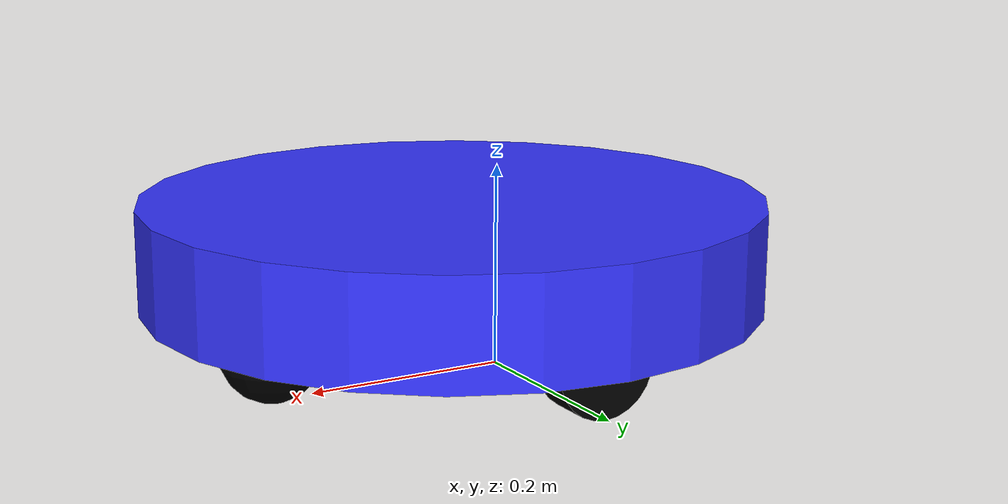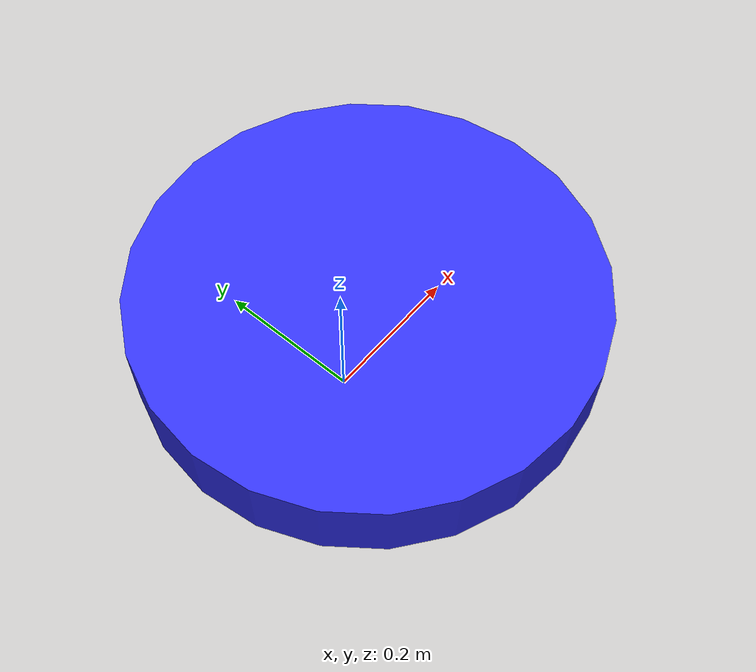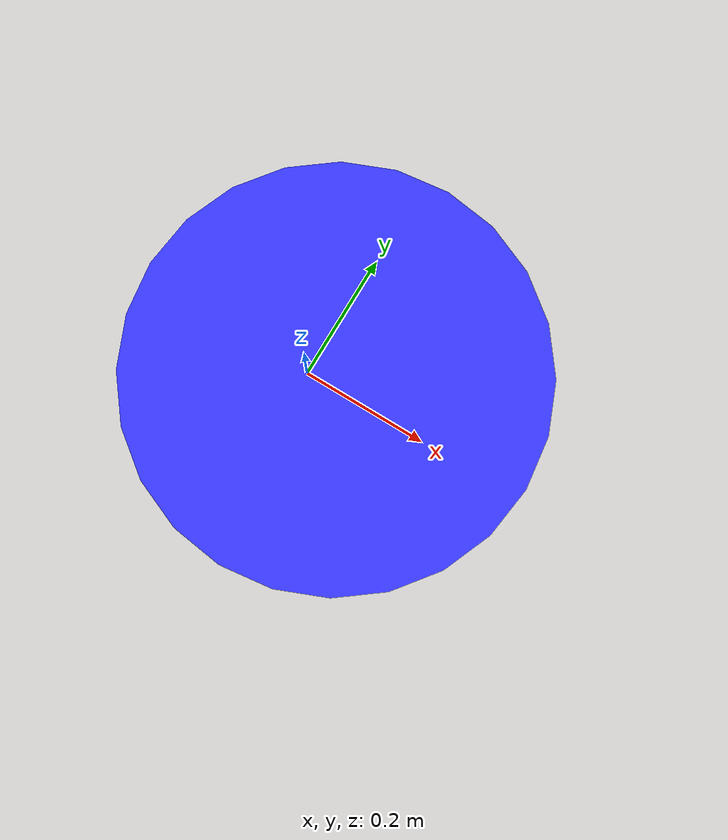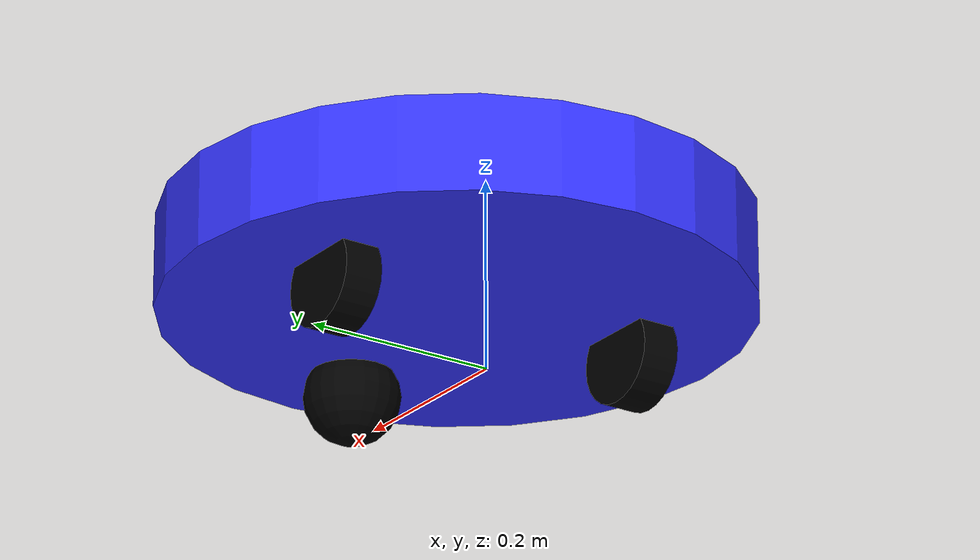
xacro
<?xml version="1.0"?>
<robot xmlns:xacro="http://www.ros.org/wiki/xacro">

    <xacro:include filename="inertial.xacro"/>

    <material name="white">
        <color rgba="1 1 1 1"/>
    </material>

    <material name="orange">
        <color rgba="1 0.3 0.1 1"/>
    </material>

    <material name="blue">
        <color rgba="0.2 0.2 1 1"/>
    </material>

    <material name="black">
        <color rgba="0 0 0 1"/>
    </material>

    <!-- BASE LINK -->
    <link name="base_link">
    </link>

    <!-- CHASSIS LINK -->
    <joint name="chassis_joint" type="fixed">
        <parent link="base_link"/>
        <child link="chassis"/>
        <origin xyz="-0.1 0 0.05"/>
    </joint>

    <link name="chassis">
        <visual>
            <origin xyz="0.15 0 0.075"/>
            <geometry>
                <cylinder radius="0.3" length="0.1"/> <!-- Circular chassis -->
            </geometry>
            <material name="blue">
                <color rgba="0.2 0.2 1 1"/>
            </material>
        </visual>
        <collision>
            <origin xyz="0.15 0 0.075"/>
            <geometry>
                <cylinder radius="0.3" length="0.15"/>
            </geometry>
        </collision>
        <xacro:inertial_cylinder mass="0.5" radius="0.3" length="0.15">
            <origin xyz="0.3 0 0.075" rpy="0 0 0"/>
        </xacro:inertial_cylinder>
    </link>

    <!-- LEFT WHEEL OF ROBOT -->
    <joint name="left_wheel_joint" type="continuous">
        <parent link="base_link"/>
        <child link="left_wheel"/>
        <origin xyz="0 0.175 0.05" rpy="-${pi/2} 0 0"/>
        <axis xyz="0 0 1"/>
    </joint>

    <link name="left_wheel">
        <visual>
            <geometry>
                <cylinder radius="0.05" length="0.04"/>
            </geometry>
            <material name="black">
                <color rgba="0 0 0 1"/>
            </material>
        </visual>
        <collision>
            <geometry>
                <cylinder radius="0.05" length="0.04"/>
            </geometry>
        </collision>
        <xacro:inertial_cylinder mass="0.1" length="0.04" radius="0.05">
            <origin xyz="0 0 0" rpy="0 0 0"/>
        </xacro:inertial_cylinder>
    </link>

    <gazebo reference="left_wheel">
        <mu1>1.0</mu1>
        <mu2>1.0</mu2>
    </gazebo>

    <!-- RIGHT WHEEL OF ROBOT -->
    <joint name="right_wheel_joint" type="continuous">
        <parent link="base_link"/>
        <child link="right_wheel"/>
        <origin xyz="0 -0.175 0.05" rpy="${pi/2} 0 0"/>
        <axis xyz="0 0 -1"/>
    </joint>

    <link name="right_wheel">
        <visual>
            <geometry>
                <cylinder radius="0.05" length="0.04"/>
            </geometry>
            <material name="black">
                <color rgba="0 0 0 1"/>
            </material>
        </visual>
        <collision>
            <geometry>
                <cylinder radius="0.05" length="0.04"/>
            </geometry>
        </collision>
        <xacro:inertial_cylinder mass="0.1" length="0.04" radius="0.05">
            <origin xyz="0 0 0" rpy="0 0 0"/>
        </xacro:inertial_cylinder>
    </link>

    <gazebo reference="right_wheel">
        <mu1>1.0</mu1>
        <mu2>1.0</mu2>
    </gazebo>

    <!-- DOLLY WHEEL JOINT -->
    <joint name="dolly_wheel_joint" type="fixed">
        <parent link="chassis"/>
        <child link="dolly_wheel"/>
        <origin xyz="0.34 0 0"/>
    </joint>

    <link name="dolly_wheel">
        <visual>
            <geometry>
                <sphere radius="0.05"/>
            </geometry>
            <material name="black">
                <color rgba="0 0 0 1"/>
            </material>
        </visual>
        <collision>
            <geometry>
                <sphere radius="0.05"/>
            </geometry>
        </collision>
        <xacro:inertial_sphere mass="0.1" radius="0.05">
            <origin xyz="0 0 0" rpy="0 0 0"/>
        </xacro:inertial_sphere>
    </link>

    <gazebo reference="dolly_wheel">
        <mu1 value="0.001"/>
        <mu2 value="0.001"/>
    </gazebo>

</robot>

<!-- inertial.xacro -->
<robot xmlns:xacro="http://www.ros.org/wiki/xacro" >

    <!-- Specify some standard inertial calculations https://en.wikipedia.org/wiki/List_of_moments_of_inertia -->
    <!-- These make use of xacro's mathematical functionality -->

    <xacro:macro name="inertial_sphere" params="mass radius *origin">
        <inertial>
            <xacro:insert_block name="origin"/>
            <mass value="${mass}" />
            <inertia ixx="${(2/5) * mass * (radius*radius)}" ixy="0.0" ixz="0.0"
                    iyy="${(2/5) * mass * (radius*radius)}" iyz="0.0"
                    izz="${(2/5) * mass * (radius*radius)}" />
        </inertial>
    </xacro:macro>

    <xacro:macro name="inertial_box" params="mass x y z *origin">
        <inertial>
            <xacro:insert_block name="origin"/>
            <mass value="${mass}" />
            <inertia ixx="${(1/12) * mass * (y*y+z*z)}" ixy="0.0" ixz="0.0"
                    iyy="${(1/12) * mass * (x*x+z*z)}" iyz="0.0"
                    izz="${(1/12) * mass * (x*x+y*y)}" />
        </inertial>
    </xacro:macro>

    <xacro:macro name="inertial_cylinder" params="mass length radius *origin">
        <inertial>
            <xacro:insert_block name="origin"/>
            <mass value="${mass}" />
            <inertia ixx="${(1/12) * mass * (3*radius*radius + length*length)}" ixy="0.0" ixz="0.0"
                    iyy="${(1/12) * mass * (3*radius*radius + length*length)}" iyz="0.0"
                    izz="${(1/2) * mass * (radius*radius)}" />
        </inertial>
    </xacro:macro>

</robot>
